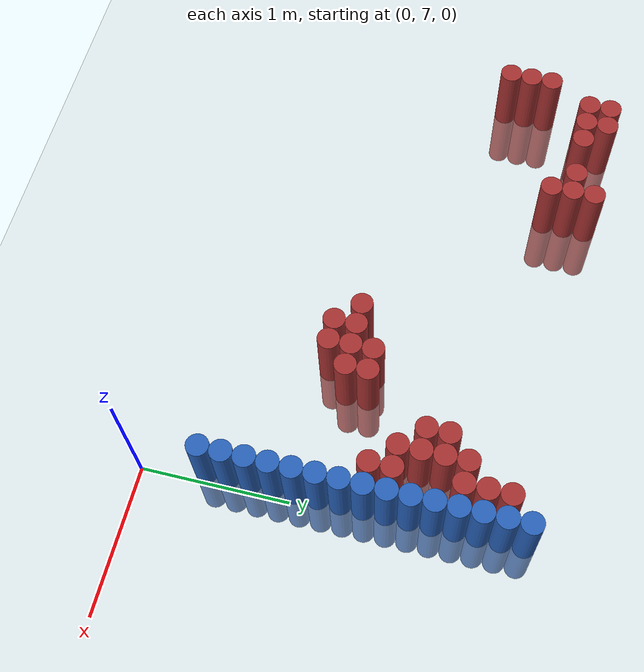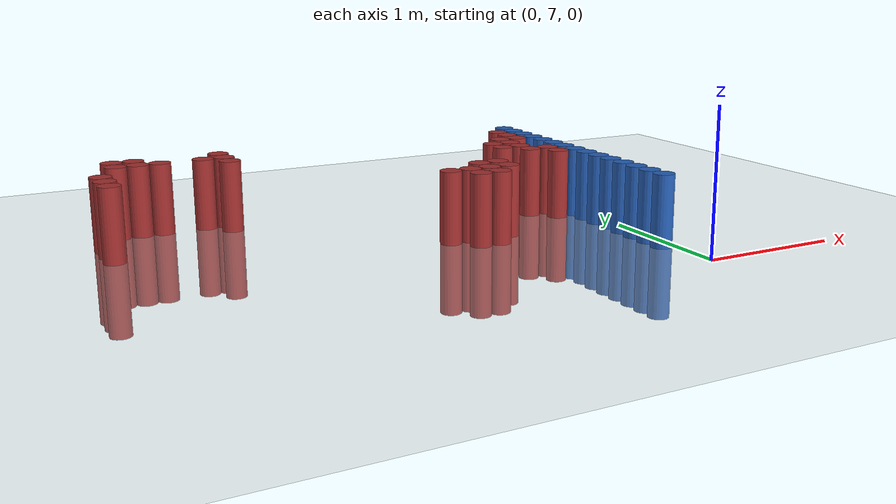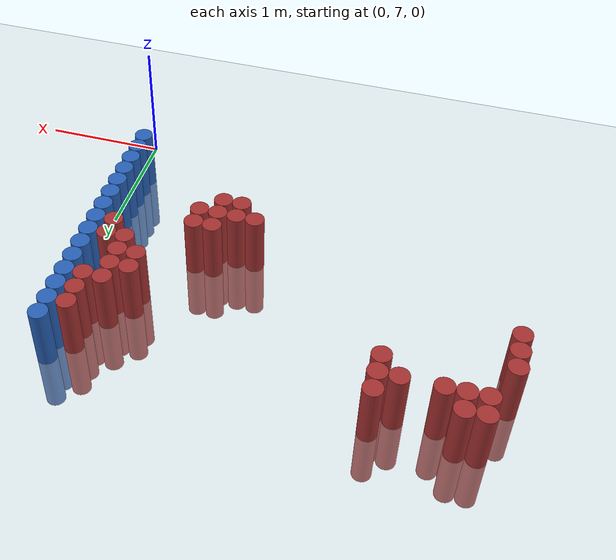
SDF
<sdf version="1.6">
 <world name="world_92">
  <model name="ground_plane">
   <static>1</static>
   <link name="link">
    <collision name="collision">
     <geometry><plane><normal>0 0 1</normal><size>100 100</size></plane></geometry>
     <surface><friction><ode><mu>100</mu><mu2>50</mu2></ode></friction></surface>
    </collision>
    <visual name="visual">
     <cast_shadows>0</cast_shadows>
     <geometry><plane><normal>0 0 1</normal><size>100 100</size></plane></geometry>
     <material>
      <script><uri>file://media/materials/scripts/gazebo.material</uri><name>Gazebo/Grey</name></script>
     </material>
    </visual>
   </link>
  </model>
  <model name="unit_cylinder_154">
   <static>1</static>
   <pose>-3.375000 8.775000 0.000000 0.000000 0.000000 0.000000</pose>
   <link name="link">
    <inertial>
     <mass>1</mass>
     <inertia><ixx>0.145833</ixx><ixy>0</ixy><ixz>0</ixz><iyy>0.145833</iyy><iyz>0</iyz><izz>0.125</izz></inertia>
    </inertial>
    <collision name="collision">
     <geometry><cylinder><radius>0.075000</radius><length>1</length></cylinder></geometry>
    </collision>
    <visual name="visual">
     <geometry><cylinder><radius>0.075000</radius><length>1</length></cylinder></geometry>
     <material>
      <ambient>0.648000 0.192000 0.192000 1</ambient>
      <diffuse>0.648000 0.192000 0.192000 1</diffuse>
     </material>
     <material>
      <script><name>Gazebo/Grey</name><uri>file://media/materials/scripts/gazebo.material</uri></script>
     </material>
    </visual>
   </link>
  </model>
  <model name="unit_cylinder_155">
   <static>1</static>
   <pose>-3.375000 8.925000 0.000000 0.000000 0.000000 0.000000</pose>
   <link name="link">
    <inertial>
     <mass>1</mass>
     <inertia><ixx>0.145833</ixx><ixy>0</ixy><ixz>0</ixz><iyy>0.145833</iyy><iyz>0</iyz><izz>0.125</izz></inertia>
    </inertial>
    <collision name="collision">
     <geometry><cylinder><radius>0.075000</radius><length>1</length></cylinder></geometry>
    </collision>
    <visual name="visual">
     <geometry><cylinder><radius>0.075000</radius><length>1</length></cylinder></geometry>
     <material>
      <ambient>0.648000 0.192000 0.192000 1</ambient>
      <diffuse>0.648000 0.192000 0.192000 1</diffuse>
     </material>
     <material>
      <script><name>Gazebo/Grey</name><uri>file://media/materials/scripts/gazebo.material</uri></script>
     </material>
    </visual>
   </link>
  </model>
  <model name="unit_cylinder_156">
   <static>1</static>
   <pose>-3.375000 9.075000 0.000000 0.000000 0.000000 0.000000</pose>
   <link name="link">
    <inertial>
     <mass>1</mass>
     <inertia><ixx>0.145833</ixx><ixy>0</ixy><ixz>0</ixz><iyy>0.145833</iyy><iyz>0</iyz><izz>0.125</izz></inertia>
    </inertial>
    <collision name="collision">
     <geometry><cylinder><radius>0.075000</radius><length>1</length></cylinder></geometry>
    </collision>
    <visual name="visual">
     <geometry><cylinder><radius>0.075000</radius><length>1</length></cylinder></geometry>
     <material>
      <ambient>0.648000 0.192000 0.192000 1</ambient>
      <diffuse>0.648000 0.192000 0.192000 1</diffuse>
     </material>
     <material>
      <script><name>Gazebo/Grey</name><uri>file://media/materials/scripts/gazebo.material</uri></script>
     </material>
    </visual>
   </link>
  </model>
  <model name="unit_cylinder_162">
   <static>1</static>
   <pose>-3.225000 9.375000 0.000000 0.000000 0.000000 0.000000</pose>
   <link name="link">
    <inertial>
     <mass>1</mass>
     <inertia><ixx>0.145833</ixx><ixy>0</ixy><ixz>0</ixz><iyy>0.145833</iyy><iyz>0</iyz><izz>0.125</izz></inertia>
    </inertial>
    <collision name="collision">
     <geometry><cylinder><radius>0.075000</radius><length>1</length></cylinder></geometry>
    </collision>
    <visual name="visual">
     <geometry><cylinder><radius>0.075000</radius><length>1</length></cylinder></geometry>
     <material>
      <ambient>0.648000 0.192000 0.192000 1</ambient>
      <diffuse>0.648000 0.192000 0.192000 1</diffuse>
     </material>
     <material>
      <script><name>Gazebo/Grey</name><uri>file://media/materials/scripts/gazebo.material</uri></script>
     </material>
    </visual>
   </link>
  </model>
  <model name="unit_cylinder_163">
   <static>1</static>
   <pose>-3.225000 9.525000 0.000000 0.000000 0.000000 0.000000</pose>
   <link name="link">
    <inertial>
     <mass>1</mass>
     <inertia><ixx>0.145833</ixx><ixy>0</ixy><ixz>0</ixz><iyy>0.145833</iyy><iyz>0</iyz><izz>0.125</izz></inertia>
    </inertial>
    <collision name="collision">
     <geometry><cylinder><radius>0.075000</radius><length>1</length></cylinder></geometry>
    </collision>
    <visual name="visual">
     <geometry><cylinder><radius>0.075000</radius><length>1</length></cylinder></geometry>
     <material>
      <ambient>0.648000 0.192000 0.192000 1</ambient>
      <diffuse>0.648000 0.192000 0.192000 1</diffuse>
     </material>
     <material>
      <script><name>Gazebo/Grey</name><uri>file://media/materials/scripts/gazebo.material</uri></script>
     </material>
    </visual>
   </link>
  </model>
  <model name="unit_cylinder_166">
   <static>1</static>
   <pose>-3.075000 9.375000 0.000000 0.000000 0.000000 0.000000</pose>
   <link name="link">
    <inertial>
     <mass>1</mass>
     <inertia><ixx>0.145833</ixx><ixy>0</ixy><ixz>0</ixz><iyy>0.145833</iyy><iyz>0</iyz><izz>0.125</izz></inertia>
    </inertial>
    <collision name="collision">
     <geometry><cylinder><radius>0.075000</radius><length>1</length></cylinder></geometry>
    </collision>
    <visual name="visual">
     <geometry><cylinder><radius>0.075000</radius><length>1</length></cylinder></geometry>
     <material>
      <ambient>0.648000 0.192000 0.192000 1</ambient>
      <diffuse>0.648000 0.192000 0.192000 1</diffuse>
     </material>
     <material>
      <script><name>Gazebo/Grey</name><uri>file://media/materials/scripts/gazebo.material</uri></script>
     </material>
    </visual>
   </link>
  </model>
  <model name="unit_cylinder_167">
   <static>1</static>
   <pose>-3.075000 9.525000 0.000000 0.000000 0.000000 0.000000</pose>
   <link name="link">
    <inertial>
     <mass>1</mass>
     <inertia><ixx>0.145833</ixx><ixy>0</ixy><ixz>0</ixz><iyy>0.145833</iyy><iyz>0</iyz><izz>0.125</izz></inertia>
    </inertial>
    <collision name="collision">
     <geometry><cylinder><radius>0.075000</radius><length>1</length></cylinder></geometry>
    </collision>
    <visual name="visual">
     <geometry><cylinder><radius>0.075000</radius><length>1</length></cylinder></geometry>
     <material>
      <ambient>0.648000 0.192000 0.192000 1</ambient>
      <diffuse>0.648000 0.192000 0.192000 1</diffuse>
     </material>
     <material>
      <script><name>Gazebo/Grey</name><uri>file://media/materials/scripts/gazebo.material</uri></script>
     </material>
    </visual>
   </link>
  </model>
  <model name="unit_cylinder_171">
   <static>1</static>
   <pose>-2.925000 9.375000 0.000000 0.000000 0.000000 0.000000</pose>
   <link name="link">
    <inertial>
     <mass>1</mass>
     <inertia><ixx>0.145833</ixx><ixy>0</ixy><ixz>0</ixz><iyy>0.145833</iyy><iyz>0</iyz><izz>0.125</izz></inertia>
    </inertial>
    <collision name="collision">
     <geometry><cylinder><radius>0.075000</radius><length>1</length></cylinder></geometry>
    </collision>
    <visual name="visual">
     <geometry><cylinder><radius>0.075000</radius><length>1</length></cylinder></geometry>
     <material>
      <ambient>0.648000 0.192000 0.192000 1</ambient>
      <diffuse>0.648000 0.192000 0.192000 1</diffuse>
     </material>
     <material>
      <script><name>Gazebo/Grey</name><uri>file://media/materials/scripts/gazebo.material</uri></script>
     </material>
    </visual>
   </link>
  </model>
  <model name="unit_cylinder_183">
   <static>1</static>
   <pose>-2.625000 9.375000 0.000000 0.000000 0.000000 0.000000</pose>
   <link name="link">
    <inertial>
     <mass>1</mass>
     <inertia><ixx>0.145833</ixx><ixy>0</ixy><ixz>0</ixz><iyy>0.145833</iyy><iyz>0</iyz><izz>0.125</izz></inertia>
    </inertial>
    <collision name="collision">
     <geometry><cylinder><radius>0.075000</radius><length>1</length></cylinder></geometry>
    </collision>
    <visual name="visual">
     <geometry><cylinder><radius>0.075000</radius><length>1</length></cylinder></geometry>
     <material>
      <ambient>0.648000 0.192000 0.192000 1</ambient>
      <diffuse>0.648000 0.192000 0.192000 1</diffuse>
     </material>
     <material>
      <script><name>Gazebo/Grey</name><uri>file://media/materials/scripts/gazebo.material</uri></script>
     </material>
    </visual>
   </link>
  </model>
  <model name="unit_cylinder_186">
   <static>1</static>
   <pose>-2.475000 9.225000 0.000000 0.000000 0.000000 0.000000</pose>
   <link name="link">
    <inertial>
     <mass>1</mass>
     <inertia><ixx>0.145833</ixx><ixy>0</ixy><ixz>0</ixz><iyy>0.145833</iyy><iyz>0</iyz><izz>0.125</izz></inertia>
    </inertial>
    <collision name="collision">
     <geometry><cylinder><radius>0.075000</radius><length>1</length></cylinder></geometry>
    </collision>
    <visual name="visual">
     <geometry><cylinder><radius>0.075000</radius><length>1</length></cylinder></geometry>
     <material>
      <ambient>0.648000 0.192000 0.192000 1</ambient>
      <diffuse>0.648000 0.192000 0.192000 1</diffuse>
     </material>
     <material>
      <script><name>Gazebo/Grey</name><uri>file://media/materials/scripts/gazebo.material</uri></script>
     </material>
    </visual>
   </link>
  </model>
  <model name="unit_cylinder_187">
   <static>1</static>
   <pose>-2.475000 9.375000 0.000000 0.000000 0.000000 0.000000</pose>
   <link name="link">
    <inertial>
     <mass>1</mass>
     <inertia><ixx>0.145833</ixx><ixy>0</ixy><ixz>0</ixz><iyy>0.145833</iyy><iyz>0</iyz><izz>0.125</izz></inertia>
    </inertial>
    <collision name="collision">
     <geometry><cylinder><radius>0.075000</radius><length>1</length></cylinder></geometry>
    </collision>
    <visual name="visual">
     <geometry><cylinder><radius>0.075000</radius><length>1</length></cylinder></geometry>
     <material>
      <ambient>0.648000 0.192000 0.192000 1</ambient>
      <diffuse>0.648000 0.192000 0.192000 1</diffuse>
     </material>
     <material>
      <script><name>Gazebo/Grey</name><uri>file://media/materials/scripts/gazebo.material</uri></script>
     </material>
    </visual>
   </link>
  </model>
  <model name="unit_cylinder_188">
   <static>1</static>
   <pose>-2.475000 9.525000 0.000000 0.000000 0.000000 0.000000</pose>
   <link name="link">
    <inertial>
     <mass>1</mass>
     <inertia><ixx>0.145833</ixx><ixy>0</ixy><ixz>0</ixz><iyy>0.145833</iyy><iyz>0</iyz><izz>0.125</izz></inertia>
    </inertial>
    <collision name="collision">
     <geometry><cylinder><radius>0.075000</radius><length>1</length></cylinder></geometry>
    </collision>
    <visual name="visual">
     <geometry><cylinder><radius>0.075000</radius><length>1</length></cylinder></geometry>
     <material>
      <ambient>0.648000 0.192000 0.192000 1</ambient>
      <diffuse>0.648000 0.192000 0.192000 1</diffuse>
     </material>
     <material>
      <script><name>Gazebo/Grey</name><uri>file://media/materials/scripts/gazebo.material</uri></script>
     </material>
    </visual>
   </link>
  </model>
  <model name="unit_cylinder_198">
   <static>1</static>
   <pose>-1.275000 8.175000 0.000000 0.000000 0.000000 0.000000</pose>
   <link name="link">
    <inertial>
     <mass>1</mass>
     <inertia><ixx>0.145833</ixx><ixy>0</ixy><ixz>0</ixz><iyy>0.145833</iyy><iyz>0</iyz><izz>0.125</izz></inertia>
    </inertial>
    <collision name="collision">
     <geometry><cylinder><radius>0.075000</radius><length>1</length></cylinder></geometry>
    </collision>
    <visual name="visual">
     <geometry><cylinder><radius>0.075000</radius><length>1</length></cylinder></geometry>
     <material>
      <ambient>0.648000 0.192000 0.192000 1</ambient>
      <diffuse>0.648000 0.192000 0.192000 1</diffuse>
     </material>
     <material>
      <script><name>Gazebo/Grey</name><uri>file://media/materials/scripts/gazebo.material</uri></script>
     </material>
    </visual>
   </link>
  </model>
  <model name="unit_cylinder_199">
   <static>1</static>
   <pose>-1.125000 8.025000 0.000000 0.000000 0.000000 0.000000</pose>
   <link name="link">
    <inertial>
     <mass>1</mass>
     <inertia><ixx>0.145833</ixx><ixy>0</ixy><ixz>0</ixz><iyy>0.145833</iyy><iyz>0</iyz><izz>0.125</izz></inertia>
    </inertial>
    <collision name="collision">
     <geometry><cylinder><radius>0.075000</radius><length>1</length></cylinder></geometry>
    </collision>
    <visual name="visual">
     <geometry><cylinder><radius>0.075000</radius><length>1</length></cylinder></geometry>
     <material>
      <ambient>0.648000 0.192000 0.192000 1</ambient>
      <diffuse>0.648000 0.192000 0.192000 1</diffuse>
     </material>
     <material>
      <script><name>Gazebo/Grey</name><uri>file://media/materials/scripts/gazebo.material</uri></script>
     </material>
    </visual>
   </link>
  </model>
  <model name="unit_cylinder_200">
   <static>1</static>
   <pose>-1.125000 8.175000 0.000000 0.000000 0.000000 0.000000</pose>
   <link name="link">
    <inertial>
     <mass>1</mass>
     <inertia><ixx>0.145833</ixx><ixy>0</ixy><ixz>0</ixz><iyy>0.145833</iyy><iyz>0</iyz><izz>0.125</izz></inertia>
    </inertial>
    <collision name="collision">
     <geometry><cylinder><radius>0.075000</radius><length>1</length></cylinder></geometry>
    </collision>
    <visual name="visual">
     <geometry><cylinder><radius>0.075000</radius><length>1</length></cylinder></geometry>
     <material>
      <ambient>0.648000 0.192000 0.192000 1</ambient>
      <diffuse>0.648000 0.192000 0.192000 1</diffuse>
     </material>
     <material>
      <script><name>Gazebo/Grey</name><uri>file://media/materials/scripts/gazebo.material</uri></script>
     </material>
    </visual>
   </link>
  </model>
  <model name="unit_cylinder_203">
   <static>1</static>
   <pose>-0.975000 8.025000 0.000000 0.000000 0.000000 0.000000</pose>
   <link name="link">
    <inertial>
     <mass>1</mass>
     <inertia><ixx>0.145833</ixx><ixy>0</ixy><ixz>0</ixz><iyy>0.145833</iyy><iyz>0</iyz><izz>0.125</izz></inertia>
    </inertial>
    <collision name="collision">
     <geometry><cylinder><radius>0.075000</radius><length>1</length></cylinder></geometry>
    </collision>
    <visual name="visual">
     <geometry><cylinder><radius>0.075000</radius><length>1</length></cylinder></geometry>
     <material>
      <ambient>0.648000 0.192000 0.192000 1</ambient>
      <diffuse>0.648000 0.192000 0.192000 1</diffuse>
     </material>
     <material>
      <script><name>Gazebo/Grey</name><uri>file://media/materials/scripts/gazebo.material</uri></script>
     </material>
    </visual>
   </link>
  </model>
  <model name="unit_cylinder_204">
   <static>1</static>
   <pose>-0.975000 8.175000 0.000000 0.000000 0.000000 0.000000</pose>
   <link name="link">
    <inertial>
     <mass>1</mass>
     <inertia><ixx>0.145833</ixx><ixy>0</ixy><ixz>0</ixz><iyy>0.145833</iyy><iyz>0</iyz><izz>0.125</izz></inertia>
    </inertial>
    <collision name="collision">
     <geometry><cylinder><radius>0.075000</radius><length>1</length></cylinder></geometry>
    </collision>
    <visual name="visual">
     <geometry><cylinder><radius>0.075000</radius><length>1</length></cylinder></geometry>
     <material>
      <ambient>0.648000 0.192000 0.192000 1</ambient>
      <diffuse>0.648000 0.192000 0.192000 1</diffuse>
     </material>
     <material>
      <script><name>Gazebo/Grey</name><uri>file://media/materials/scripts/gazebo.material</uri></script>
     </material>
    </visual>
   </link>
  </model>
  <model name="unit_cylinder_205">
   <static>1</static>
   <pose>-0.975000 8.325000 0.000000 0.000000 0.000000 0.000000</pose>
   <link name="link">
    <inertial>
     <mass>1</mass>
     <inertia><ixx>0.145833</ixx><ixy>0</ixy><ixz>0</ixz><iyy>0.145833</iyy><iyz>0</iyz><izz>0.125</izz></inertia>
    </inertial>
    <collision name="collision">
     <geometry><cylinder><radius>0.075000</radius><length>1</length></cylinder></geometry>
    </collision>
    <visual name="visual">
     <geometry><cylinder><radius>0.075000</radius><length>1</length></cylinder></geometry>
     <material>
      <ambient>0.648000 0.192000 0.192000 1</ambient>
      <diffuse>0.648000 0.192000 0.192000 1</diffuse>
     </material>
     <material>
      <script><name>Gazebo/Grey</name><uri>file://media/materials/scripts/gazebo.material</uri></script>
     </material>
    </visual>
   </link>
  </model>
  <model name="unit_cylinder_209">
   <static>1</static>
   <pose>-0.825000 8.175000 0.000000 0.000000 0.000000 0.000000</pose>
   <link name="link">
    <inertial>
     <mass>1</mass>
     <inertia><ixx>0.145833</ixx><ixy>0</ixy><ixz>0</ixz><iyy>0.145833</iyy><iyz>0</iyz><izz>0.125</izz></inertia>
    </inertial>
    <collision name="collision">
     <geometry><cylinder><radius>0.075000</radius><length>1</length></cylinder></geometry>
    </collision>
    <visual name="visual">
     <geometry><cylinder><radius>0.075000</radius><length>1</length></cylinder></geometry>
     <material>
      <ambient>0.648000 0.192000 0.192000 1</ambient>
      <diffuse>0.648000 0.192000 0.192000 1</diffuse>
     </material>
     <material>
      <script><name>Gazebo/Grey</name><uri>file://media/materials/scripts/gazebo.material</uri></script>
     </material>
    </visual>
   </link>
  </model>
  <model name="unit_cylinder_210">
   <static>1</static>
   <pose>-0.825000 8.325000 0.000000 0.000000 0.000000 0.000000</pose>
   <link name="link">
    <inertial>
     <mass>1</mass>
     <inertia><ixx>0.145833</ixx><ixy>0</ixy><ixz>0</ixz><iyy>0.145833</iyy><iyz>0</iyz><izz>0.125</izz></inertia>
    </inertial>
    <collision name="collision">
     <geometry><cylinder><radius>0.075000</radius><length>1</length></cylinder></geometry>
    </collision>
    <visual name="visual">
     <geometry><cylinder><radius>0.075000</radius><length>1</length></cylinder></geometry>
     <material>
      <ambient>0.648000 0.192000 0.192000 1</ambient>
      <diffuse>0.648000 0.192000 0.192000 1</diffuse>
     </material>
     <material>
      <script><name>Gazebo/Grey</name><uri>file://media/materials/scripts/gazebo.material</uri></script>
     </material>
    </visual>
   </link>
  </model>
  <model name="unit_cylinder_220">
   <static>1</static>
   <pose>-0.525000 8.775000 0.000000 0.000000 0.000000 0.000000</pose>
   <link name="link">
    <inertial>
     <mass>1</mass>
     <inertia><ixx>0.145833</ixx><ixy>0</ixy><ixz>0</ixz><iyy>0.145833</iyy><iyz>0</iyz><izz>0.125</izz></inertia>
    </inertial>
    <collision name="collision">
     <geometry><cylinder><radius>0.075000</radius><length>1</length></cylinder></geometry>
    </collision>
    <visual name="visual">
     <geometry><cylinder><radius>0.075000</radius><length>1</length></cylinder></geometry>
     <material>
      <ambient>0.648000 0.192000 0.192000 1</ambient>
      <diffuse>0.648000 0.192000 0.192000 1</diffuse>
     </material>
     <material>
      <script><name>Gazebo/Grey</name><uri>file://media/materials/scripts/gazebo.material</uri></script>
     </material>
    </visual>
   </link>
  </model>
  <model name="unit_cylinder_221">
   <static>1</static>
   <pose>-0.525000 8.925000 0.000000 0.000000 0.000000 0.000000</pose>
   <link name="link">
    <inertial>
     <mass>1</mass>
     <inertia><ixx>0.145833</ixx><ixy>0</ixy><ixz>0</ixz><iyy>0.145833</iyy><iyz>0</iyz><izz>0.125</izz></inertia>
    </inertial>
    <collision name="collision">
     <geometry><cylinder><radius>0.075000</radius><length>1</length></cylinder></geometry>
    </collision>
    <visual name="visual">
     <geometry><cylinder><radius>0.075000</radius><length>1</length></cylinder></geometry>
     <material>
      <ambient>0.648000 0.192000 0.192000 1</ambient>
      <diffuse>0.648000 0.192000 0.192000 1</diffuse>
     </material>
     <material>
      <script><name>Gazebo/Grey</name><uri>file://media/materials/scripts/gazebo.material</uri></script>
     </material>
    </visual>
   </link>
  </model>
  <model name="unit_cylinder_227">
   <static>1</static>
   <pose>-0.375000 8.625000 0.000000 0.000000 0.000000 0.000000</pose>
   <link name="link">
    <inertial>
     <mass>1</mass>
     <inertia><ixx>0.145833</ixx><ixy>0</ixy><ixz>0</ixz><iyy>0.145833</iyy><iyz>0</iyz><izz>0.125</izz></inertia>
    </inertial>
    <collision name="collision">
     <geometry><cylinder><radius>0.075000</radius><length>1</length></cylinder></geometry>
    </collision>
    <visual name="visual">
     <geometry><cylinder><radius>0.075000</radius><length>1</length></cylinder></geometry>
     <material>
      <ambient>0.648000 0.192000 0.192000 1</ambient>
      <diffuse>0.648000 0.192000 0.192000 1</diffuse>
     </material>
     <material>
      <script><name>Gazebo/Grey</name><uri>file://media/materials/scripts/gazebo.material</uri></script>
     </material>
    </visual>
   </link>
  </model>
  <model name="unit_cylinder_228">
   <static>1</static>
   <pose>-0.375000 8.775000 0.000000 0.000000 0.000000 0.000000</pose>
   <link name="link">
    <inertial>
     <mass>1</mass>
     <inertia><ixx>0.145833</ixx><ixy>0</ixy><ixz>0</ixz><iyy>0.145833</iyy><iyz>0</iyz><izz>0.125</izz></inertia>
    </inertial>
    <collision name="collision">
     <geometry><cylinder><radius>0.075000</radius><length>1</length></cylinder></geometry>
    </collision>
    <visual name="visual">
     <geometry><cylinder><radius>0.075000</radius><length>1</length></cylinder></geometry>
     <material>
      <ambient>0.648000 0.192000 0.192000 1</ambient>
      <diffuse>0.648000 0.192000 0.192000 1</diffuse>
     </material>
     <material>
      <script><name>Gazebo/Grey</name><uri>file://media/materials/scripts/gazebo.material</uri></script>
     </material>
    </visual>
   </link>
  </model>
  <model name="unit_cylinder_229">
   <static>1</static>
   <pose>-0.375000 8.925000 0.000000 0.000000 0.000000 0.000000</pose>
   <link name="link">
    <inertial>
     <mass>1</mass>
     <inertia><ixx>0.145833</ixx><ixy>0</ixy><ixz>0</ixz><iyy>0.145833</iyy><iyz>0</iyz><izz>0.125</izz></inertia>
    </inertial>
    <collision name="collision">
     <geometry><cylinder><radius>0.075000</radius><length>1</length></cylinder></geometry>
    </collision>
    <visual name="visual">
     <geometry><cylinder><radius>0.075000</radius><length>1</length></cylinder></geometry>
     <material>
      <ambient>0.648000 0.192000 0.192000 1</ambient>
      <diffuse>0.648000 0.192000 0.192000 1</diffuse>
     </material>
     <material>
      <script><name>Gazebo/Grey</name><uri>file://media/materials/scripts/gazebo.material</uri></script>
     </material>
    </visual>
   </link>
  </model>
  <model name="unit_cylinder_230">
   <static>1</static>
   <pose>-0.375000 9.075000 0.000000 0.000000 0.000000 0.000000</pose>
   <link name="link">
    <inertial>
     <mass>1</mass>
     <inertia><ixx>0.145833</ixx><ixy>0</ixy><ixz>0</ixz><iyy>0.145833</iyy><iyz>0</iyz><izz>0.125</izz></inertia>
    </inertial>
    <collision name="collision">
     <geometry><cylinder><radius>0.075000</radius><length>1</length></cylinder></geometry>
    </collision>
    <visual name="visual">
     <geometry><cylinder><radius>0.075000</radius><length>1</length></cylinder></geometry>
     <material>
      <ambient>0.648000 0.192000 0.192000 1</ambient>
      <diffuse>0.648000 0.192000 0.192000 1</diffuse>
     </material>
     <material>
      <script><name>Gazebo/Grey</name><uri>file://media/materials/scripts/gazebo.material</uri></script>
     </material>
    </visual>
   </link>
  </model>
  <model name="unit_cylinder_242">
   <static>1</static>
   <pose>-0.225000 8.475000 0.000000 0.000000 0.000000 0.000000</pose>
   <link name="link">
    <inertial>
     <mass>1</mass>
     <inertia><ixx>0.145833</ixx><ixy>0</ixy><ixz>0</ixz><iyy>0.145833</iyy><iyz>0</iyz><izz>0.125</izz></inertia>
    </inertial>
    <collision name="collision">
     <geometry><cylinder><radius>0.075000</radius><length>1</length></cylinder></geometry>
    </collision>
    <visual name="visual">
     <geometry><cylinder><radius>0.075000</radius><length>1</length></cylinder></geometry>
     <material>
      <ambient>0.648000 0.192000 0.192000 1</ambient>
      <diffuse>0.648000 0.192000 0.192000 1</diffuse>
     </material>
     <material>
      <script><name>Gazebo/Grey</name><uri>file://media/materials/scripts/gazebo.material</uri></script>
     </material>
    </visual>
   </link>
  </model>
  <model name="unit_cylinder_243">
   <static>1</static>
   <pose>-0.225000 8.625000 0.000000 0.000000 0.000000 0.000000</pose>
   <link name="link">
    <inertial>
     <mass>1</mass>
     <inertia><ixx>0.145833</ixx><ixy>0</ixy><ixz>0</ixz><iyy>0.145833</iyy><iyz>0</iyz><izz>0.125</izz></inertia>
    </inertial>
    <collision name="collision">
     <geometry><cylinder><radius>0.075000</radius><length>1</length></cylinder></geometry>
    </collision>
    <visual name="visual">
     <geometry><cylinder><radius>0.075000</radius><length>1</length></cylinder></geometry>
     <material>
      <ambient>0.648000 0.192000 0.192000 1</ambient>
      <diffuse>0.648000 0.192000 0.192000 1</diffuse>
     </material>
     <material>
      <script><name>Gazebo/Grey</name><uri>file://media/materials/scripts/gazebo.material</uri></script>
     </material>
    </visual>
   </link>
  </model>
  <model name="unit_cylinder_244">
   <static>1</static>
   <pose>-0.225000 9.075000 0.000000 0.000000 0.000000 0.000000</pose>
   <link name="link">
    <inertial>
     <mass>1</mass>
     <inertia><ixx>0.145833</ixx><ixy>0</ixy><ixz>0</ixz><iyy>0.145833</iyy><iyz>0</iyz><izz>0.125</izz></inertia>
    </inertial>
    <collision name="collision">
     <geometry><cylinder><radius>0.075000</radius><length>1</length></cylinder></geometry>
    </collision>
    <visual name="visual">
     <geometry><cylinder><radius>0.075000</radius><length>1</length></cylinder></geometry>
     <material>
      <ambient>0.648000 0.192000 0.192000 1</ambient>
      <diffuse>0.648000 0.192000 0.192000 1</diffuse>
     </material>
     <material>
      <script><name>Gazebo/Grey</name><uri>file://media/materials/scripts/gazebo.material</uri></script>
     </material>
    </visual>
   </link>
  </model>
  <model name="unit_cylinder_245">
   <static>1</static>
   <pose>-0.225000 9.225000 0.000000 0.000000 0.000000 0.000000</pose>
   <link name="link">
    <inertial>
     <mass>1</mass>
     <inertia><ixx>0.145833</ixx><ixy>0</ixy><ixz>0</ixz><iyy>0.145833</iyy><iyz>0</iyz><izz>0.125</izz></inertia>
    </inertial>
    <collision name="collision">
     <geometry><cylinder><radius>0.075000</radius><length>1</length></cylinder></geometry>
    </collision>
    <visual name="visual">
     <geometry><cylinder><radius>0.075000</radius><length>1</length></cylinder></geometry>
     <material>
      <ambient>0.648000 0.192000 0.192000 1</ambient>
      <diffuse>0.648000 0.192000 0.192000 1</diffuse>
     </material>
     <material>
      <script><name>Gazebo/Grey</name><uri>file://media/materials/scripts/gazebo.material</uri></script>
     </material>
    </visual>
   </link>
  </model>
  <model name="unit_cylinder_246">
   <static>1</static>
   <pose>-0.225000 9.375000 0.000000 0.000000 0.000000 0.000000</pose>
   <link name="link">
    <inertial>
     <mass>1</mass>
     <inertia><ixx>0.145833</ixx><ixy>0</ixy><ixz>0</ixz><iyy>0.145833</iyy><iyz>0</iyz><izz>0.125</izz></inertia>
    </inertial>
    <collision name="collision">
     <geometry><cylinder><radius>0.075000</radius><length>1</length></cylinder></geometry>
    </collision>
    <visual name="visual">
     <geometry><cylinder><radius>0.075000</radius><length>1</length></cylinder></geometry>
     <material>
      <ambient>0.648000 0.192000 0.192000 1</ambient>
      <diffuse>0.648000 0.192000 0.192000 1</diffuse>
     </material>
     <material>
      <script><name>Gazebo/Grey</name><uri>file://media/materials/scripts/gazebo.material</uri></script>
     </material>
    </visual>
   </link>
  </model>
  <model name="unit_cylinder_262">
   <static>1</static>
   <pose>-0.075000 7.425000 0.000000 0.000000 0.000000 0.000000</pose>
   <link name="link">
    <inertial>
     <mass>1</mass>
     <inertia><ixx>0.145833</ixx><ixy>0</ixy><ixz>0</ixz><iyy>0.145833</iyy><iyz>0</iyz><izz>0.125</izz></inertia>
    </inertial>
    <collision name="collision">
     <geometry><cylinder><radius>0.075000</radius><length>1</length></cylinder></geometry>
    </collision>
    <visual name="visual">
     <geometry><cylinder><radius>0.075000</radius><length>1</length></cylinder></geometry>
     <material>
      <ambient>0.152000 0.379000 0.720000 1</ambient>
      <diffuse>0.152000 0.379000 0.720000 1</diffuse>
     </material>
     <material>
      <script><name>Gazebo/Grey</name><uri>file://media/materials/scripts/gazebo.material</uri></script>
     </material>
    </visual>
   </link>
  </model>
  <model name="unit_cylinder_263">
   <static>1</static>
   <pose>-0.075000 7.575000 0.000000 0.000000 0.000000 0.000000</pose>
   <link name="link">
    <inertial>
     <mass>1</mass>
     <inertia><ixx>0.145833</ixx><ixy>0</ixy><ixz>0</ixz><iyy>0.145833</iyy><iyz>0</iyz><izz>0.125</izz></inertia>
    </inertial>
    <collision name="collision">
     <geometry><cylinder><radius>0.075000</radius><length>1</length></cylinder></geometry>
    </collision>
    <visual name="visual">
     <geometry><cylinder><radius>0.075000</radius><length>1</length></cylinder></geometry>
     <material>
      <ambient>0.152000 0.379000 0.720000 1</ambient>
      <diffuse>0.152000 0.379000 0.720000 1</diffuse>
     </material>
     <material>
      <script><name>Gazebo/Grey</name><uri>file://media/materials/scripts/gazebo.material</uri></script>
     </material>
    </visual>
   </link>
  </model>
  <model name="unit_cylinder_264">
   <static>1</static>
   <pose>-0.075000 7.725000 0.000000 0.000000 0.000000 0.000000</pose>
   <link name="link">
    <inertial>
     <mass>1</mass>
     <inertia><ixx>0.145833</ixx><ixy>0</ixy><ixz>0</ixz><iyy>0.145833</iyy><iyz>0</iyz><izz>0.125</izz></inertia>
    </inertial>
    <collision name="collision">
     <geometry><cylinder><radius>0.075000</radius><length>1</length></cylinder></geometry>
    </collision>
    <visual name="visual">
     <geometry><cylinder><radius>0.075000</radius><length>1</length></cylinder></geometry>
     <material>
      <ambient>0.152000 0.379000 0.720000 1</ambient>
      <diffuse>0.152000 0.379000 0.720000 1</diffuse>
     </material>
     <material>
      <script><name>Gazebo/Grey</name><uri>file://media/materials/scripts/gazebo.material</uri></script>
     </material>
    </visual>
   </link>
  </model>
  <model name="unit_cylinder_265">
   <static>1</static>
   <pose>-0.075000 7.875000 0.000000 0.000000 0.000000 0.000000</pose>
   <link name="link">
    <inertial>
     <mass>1</mass>
     <inertia><ixx>0.145833</ixx><ixy>0</ixy><ixz>0</ixz><iyy>0.145833</iyy><iyz>0</iyz><izz>0.125</izz></inertia>
    </inertial>
    <collision name="collision">
     <geometry><cylinder><radius>0.075000</radius><length>1</length></cylinder></geometry>
    </collision>
    <visual name="visual">
     <geometry><cylinder><radius>0.075000</radius><length>1</length></cylinder></geometry>
     <material>
      <ambient>0.152000 0.379000 0.720000 1</ambient>
      <diffuse>0.152000 0.379000 0.720000 1</diffuse>
     </material>
     <material>
      <script><name>Gazebo/Grey</name><uri>file://media/materials/scripts/gazebo.material</uri></script>
     </material>
    </visual>
   </link>
  </model>
  <model name="unit_cylinder_266">
   <static>1</static>
   <pose>-0.075000 8.025000 0.000000 0.000000 0.000000 0.000000</pose>
   <link name="link">
    <inertial>
     <mass>1</mass>
     <inertia><ixx>0.145833</ixx><ixy>0</ixy><ixz>0</ixz><iyy>0.145833</iyy><iyz>0</iyz><izz>0.125</izz></inertia>
    </inertial>
    <collision name="collision">
     <geometry><cylinder><radius>0.075000</radius><length>1</length></cylinder></geometry>
    </collision>
    <visual name="visual">
     <geometry><cylinder><radius>0.075000</radius><length>1</length></cylinder></geometry>
     <material>
      <ambient>0.152000 0.379000 0.720000 1</ambient>
      <diffuse>0.152000 0.379000 0.720000 1</diffuse>
     </material>
     <material>
      <script><name>Gazebo/Grey</name><uri>file://media/materials/scripts/gazebo.material</uri></script>
     </material>
    </visual>
   </link>
  </model>
  <model name="unit_cylinder_267">
   <static>1</static>
   <pose>-0.075000 8.175000 0.000000 0.000000 0.000000 0.000000</pose>
   <link name="link">
    <inertial>
     <mass>1</mass>
     <inertia><ixx>0.145833</ixx><ixy>0</ixy><ixz>0</ixz><iyy>0.145833</iyy><iyz>0</iyz><izz>0.125</izz></inertia>
    </inertial>
    <collision name="collision">
     <geometry><cylinder><radius>0.075000</radius><length>1</length></cylinder></geometry>
    </collision>
    <visual name="visual">
     <geometry><cylinder><radius>0.075000</radius><length>1</length></cylinder></geometry>
     <material>
      <ambient>0.152000 0.379000 0.720000 1</ambient>
      <diffuse>0.152000 0.379000 0.720000 1</diffuse>
     </material>
     <material>
      <script><name>Gazebo/Grey</name><uri>file://media/materials/scripts/gazebo.material</uri></script>
     </material>
    </visual>
   </link>
  </model>
  <model name="unit_cylinder_268">
   <static>1</static>
   <pose>-0.075000 8.325000 0.000000 0.000000 0.000000 0.000000</pose>
   <link name="link">
    <inertial>
     <mass>1</mass>
     <inertia><ixx>0.145833</ixx><ixy>0</ixy><ixz>0</ixz><iyy>0.145833</iyy><iyz>0</iyz><izz>0.125</izz></inertia>
    </inertial>
    <collision name="collision">
     <geometry><cylinder><radius>0.075000</radius><length>1</length></cylinder></geometry>
    </collision>
    <visual name="visual">
     <geometry><cylinder><radius>0.075000</radius><length>1</length></cylinder></geometry>
     <material>
      <ambient>0.152000 0.379000 0.720000 1</ambient>
      <diffuse>0.152000 0.379000 0.720000 1</diffuse>
     </material>
     <material>
      <script><name>Gazebo/Grey</name><uri>file://media/materials/scripts/gazebo.material</uri></script>
     </material>
    </visual>
   </link>
  </model>
  <model name="unit_cylinder_269">
   <static>1</static>
   <pose>-0.075000 8.475000 0.000000 0.000000 0.000000 0.000000</pose>
   <link name="link">
    <inertial>
     <mass>1</mass>
     <inertia><ixx>0.145833</ixx><ixy>0</ixy><ixz>0</ixz><iyy>0.145833</iyy><iyz>0</iyz><izz>0.125</izz></inertia>
    </inertial>
    <collision name="collision">
     <geometry><cylinder><radius>0.075000</radius><length>1</length></cylinder></geometry>
    </collision>
    <visual name="visual">
     <geometry><cylinder><radius>0.075000</radius><length>1</length></cylinder></geometry>
     <material>
      <ambient>0.152000 0.379000 0.720000 1</ambient>
      <diffuse>0.152000 0.379000 0.720000 1</diffuse>
     </material>
     <material>
      <script><name>Gazebo/Grey</name><uri>file://media/materials/scripts/gazebo.material</uri></script>
     </material>
    </visual>
   </link>
  </model>
  <model name="unit_cylinder_270">
   <static>1</static>
   <pose>-0.075000 8.625000 0.000000 0.000000 0.000000 0.000000</pose>
   <link name="link">
    <inertial>
     <mass>1</mass>
     <inertia><ixx>0.145833</ixx><ixy>0</ixy><ixz>0</ixz><iyy>0.145833</iyy><iyz>0</iyz><izz>0.125</izz></inertia>
    </inertial>
    <collision name="collision">
     <geometry><cylinder><radius>0.075000</radius><length>1</length></cylinder></geometry>
    </collision>
    <visual name="visual">
     <geometry><cylinder><radius>0.075000</radius><length>1</length></cylinder></geometry>
     <material>
      <ambient>0.152000 0.379000 0.720000 1</ambient>
      <diffuse>0.152000 0.379000 0.720000 1</diffuse>
     </material>
     <material>
      <script><name>Gazebo/Grey</name><uri>file://media/materials/scripts/gazebo.material</uri></script>
     </material>
    </visual>
   </link>
  </model>
  <model name="unit_cylinder_271">
   <static>1</static>
   <pose>-0.075000 8.775000 0.000000 0.000000 0.000000 0.000000</pose>
   <link name="link">
    <inertial>
     <mass>1</mass>
     <inertia><ixx>0.145833</ixx><ixy>0</ixy><ixz>0</ixz><iyy>0.145833</iyy><iyz>0</iyz><izz>0.125</izz></inertia>
    </inertial>
    <collision name="collision">
     <geometry><cylinder><radius>0.075000</radius><length>1</length></cylinder></geometry>
    </collision>
    <visual name="visual">
     <geometry><cylinder><radius>0.075000</radius><length>1</length></cylinder></geometry>
     <material>
      <ambient>0.152000 0.379000 0.720000 1</ambient>
      <diffuse>0.152000 0.379000 0.720000 1</diffuse>
     </material>
     <material>
      <script><name>Gazebo/Grey</name><uri>file://media/materials/scripts/gazebo.material</uri></script>
     </material>
    </visual>
   </link>
  </model>
  <model name="unit_cylinder_272">
   <static>1</static>
   <pose>-0.075000 8.925000 0.000000 0.000000 0.000000 0.000000</pose>
   <link name="link">
    <inertial>
     <mass>1</mass>
     <inertia><ixx>0.145833</ixx><ixy>0</ixy><ixz>0</ixz><iyy>0.145833</iyy><iyz>0</iyz><izz>0.125</izz></inertia>
    </inertial>
    <collision name="collision">
     <geometry><cylinder><radius>0.075000</radius><length>1</length></cylinder></geometry>
    </collision>
    <visual name="visual">
     <geometry><cylinder><radius>0.075000</radius><length>1</length></cylinder></geometry>
     <material>
      <ambient>0.152000 0.379000 0.720000 1</ambient>
      <diffuse>0.152000 0.379000 0.720000 1</diffuse>
     </material>
     <material>
      <script><name>Gazebo/Grey</name><uri>file://media/materials/scripts/gazebo.material</uri></script>
     </material>
    </visual>
   </link>
  </model>
  <model name="unit_cylinder_273">
   <static>1</static>
   <pose>-0.075000 9.075000 0.000000 0.000000 0.000000 0.000000</pose>
   <link name="link">
    <inertial>
     <mass>1</mass>
     <inertia><ixx>0.145833</ixx><ixy>0</ixy><ixz>0</ixz><iyy>0.145833</iyy><iyz>0</iyz><izz>0.125</izz></inertia>
    </inertial>
    <collision name="collision">
     <geometry><cylinder><radius>0.075000</radius><length>1</length></cylinder></geometry>
    </collision>
    <visual name="visual">
     <geometry><cylinder><radius>0.075000</radius><length>1</length></cylinder></geometry>
     <material>
      <ambient>0.152000 0.379000 0.720000 1</ambient>
      <diffuse>0.152000 0.379000 0.720000 1</diffuse>
     </material>
     <material>
      <script><name>Gazebo/Grey</name><uri>file://media/materials/scripts/gazebo.material</uri></script>
     </material>
    </visual>
   </link>
  </model>
  <model name="unit_cylinder_274">
   <static>1</static>
   <pose>-0.075000 9.225000 0.000000 0.000000 0.000000 0.000000</pose>
   <link name="link">
    <inertial>
     <mass>1</mass>
     <inertia><ixx>0.145833</ixx><ixy>0</ixy><ixz>0</ixz><iyy>0.145833</iyy><iyz>0</iyz><izz>0.125</izz></inertia>
    </inertial>
    <collision name="collision">
     <geometry><cylinder><radius>0.075000</radius><length>1</length></cylinder></geometry>
    </collision>
    <visual name="visual">
     <geometry><cylinder><radius>0.075000</radius><length>1</length></cylinder></geometry>
     <material>
      <ambient>0.152000 0.379000 0.720000 1</ambient>
      <diffuse>0.152000 0.379000 0.720000 1</diffuse>
     </material>
     <material>
      <script><name>Gazebo/Grey</name><uri>file://media/materials/scripts/gazebo.material</uri></script>
     </material>
    </visual>
   </link>
  </model>
  <model name="unit_cylinder_275">
   <static>1</static>
   <pose>-0.075000 9.375000 0.000000 0.000000 0.000000 0.000000</pose>
   <link name="link">
    <inertial>
     <mass>1</mass>
     <inertia><ixx>0.145833</ixx><ixy>0</ixy><ixz>0</ixz><iyy>0.145833</iyy><iyz>0</iyz><izz>0.125</izz></inertia>
    </inertial>
    <collision name="collision">
     <geometry><cylinder><radius>0.075000</radius><length>1</length></cylinder></geometry>
    </collision>
    <visual name="visual">
     <geometry><cylinder><radius>0.075000</radius><length>1</length></cylinder></geometry>
     <material>
      <ambient>0.152000 0.379000 0.720000 1</ambient>
      <diffuse>0.152000 0.379000 0.720000 1</diffuse>
     </material>
     <material>
      <script><name>Gazebo/Grey</name><uri>file://media/materials/scripts/gazebo.material</uri></script>
     </material>
    </visual>
   </link>
  </model>
  <model name="unit_cylinder_276">
   <static>1</static>
   <pose>-0.075000 9.525000 0.000000 0.000000 0.000000 0.000000</pose>
   <link name="link">
    <inertial>
     <mass>1</mass>
     <inertia><ixx>0.145833</ixx><ixy>0</ixy><ixz>0</ixz><iyy>0.145833</iyy><iyz>0</iyz><izz>0.125</izz></inertia>
    </inertial>
    <collision name="collision">
     <geometry><cylinder><radius>0.075000</radius><length>1</length></cylinder></geometry>
    </collision>
    <visual name="visual">
     <geometry><cylinder><radius>0.075000</radius><length>1</length></cylinder></geometry>
     <material>
      <ambient>0.152000 0.379000 0.720000 1</ambient>
      <diffuse>0.152000 0.379000 0.720000 1</diffuse>
     </material>
     <material>
      <script><name>Gazebo/Grey</name><uri>file://media/materials/scripts/gazebo.material</uri></script>
     </material>
    </visual>
   </link>
  </model>
 </world>
</sdf>
